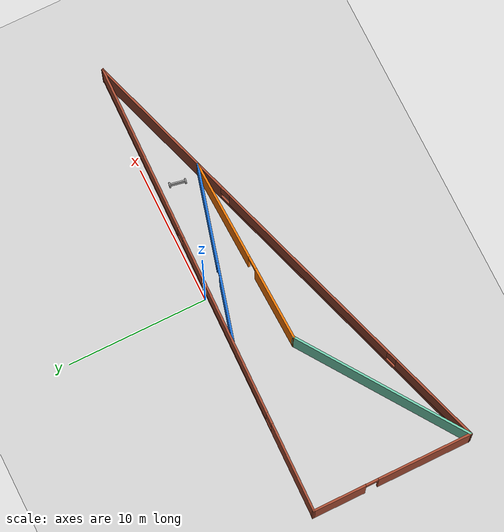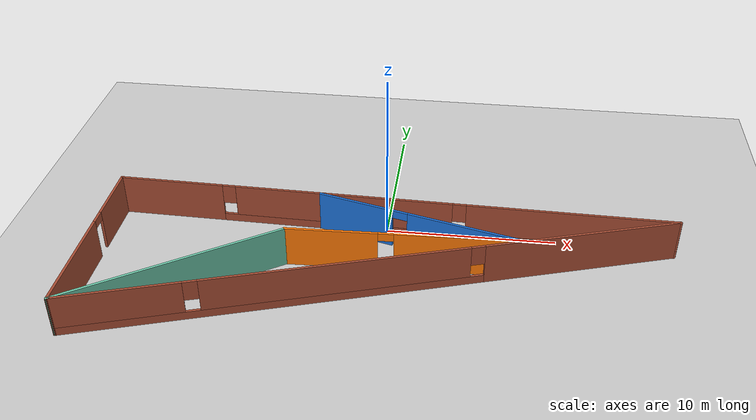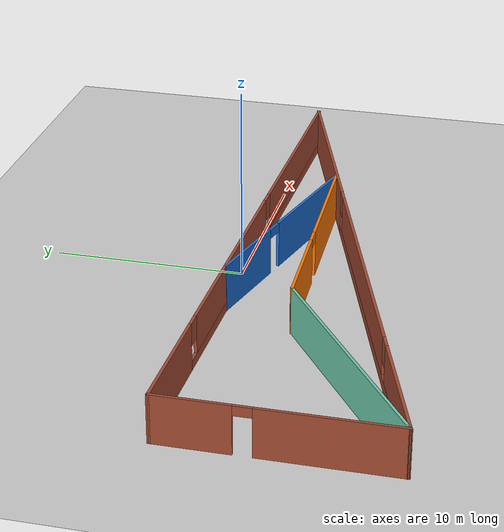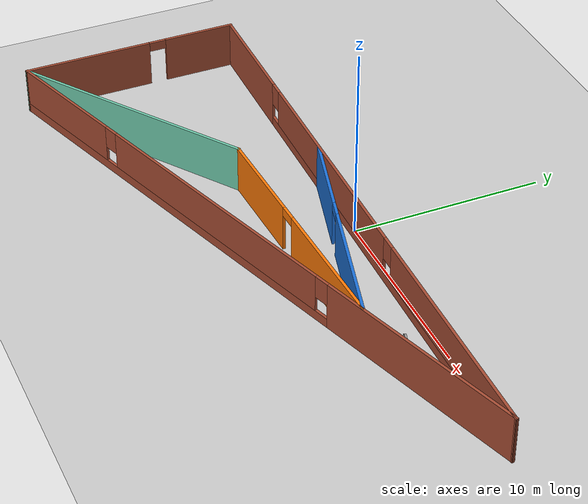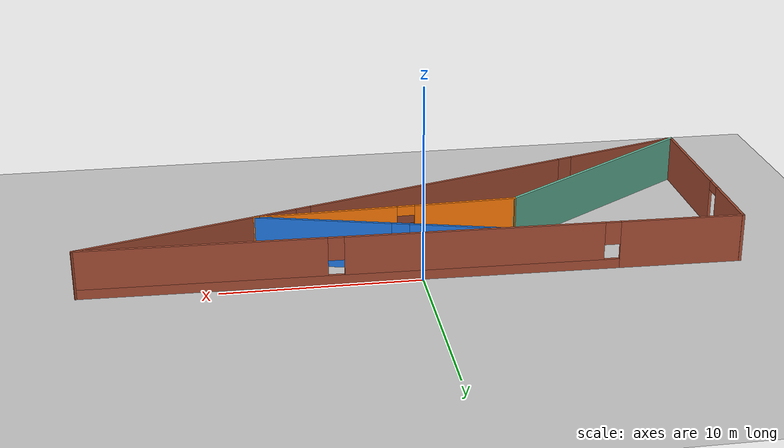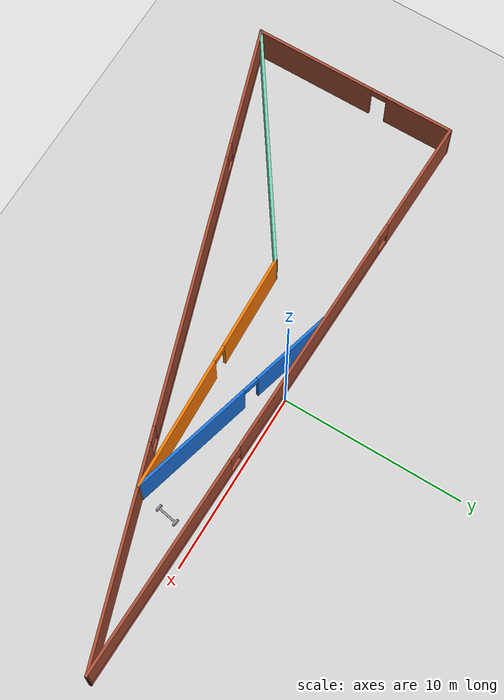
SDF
<sdf version="1.6">
 <world name="WhereAmI">
  <model name="ground_plane">
   <static>1</static>
   <link name="link">
    <collision name="collision">
     <geometry><plane><normal>0 0 1</normal><size>100 100</size></plane></geometry>
     <surface>
      <contact><collide_bitmask>65535</collide_bitmask></contact>
      <friction><ode><mu>100</mu><mu2>50</mu2></ode></friction>
     </surface>
    </collision>
    <visual name="visual">
     <cast_shadows>0</cast_shadows>
     <geometry><plane><normal>0 0 1</normal><size>100 100</size></plane></geometry>
     <material>
      <script><uri>file://media/materials/scripts/gazebo.material</uri><name>Gazebo/Grey</name></script>
     </material>
    </visual>
   </link>
  </model>
  <model name="Building">
   <pose>0.2954 -5.59685 0 0 -0 0</pose>
   <link name="Wall_0">
    <pose>-16.489 0.014665 0 0 -0 1.57343</pose>
    <visual name="Wall_0_Visual_0">
     <pose>-2.36202 0 1.25 0 -0 0</pose>
     <geometry><box><size>6.79601 0.15 2.5</size></box></geometry>
     <material>
      <script><uri>file://media/materials/scripts/gazebo.material</uri><name>Gazebo/Bricks</name></script>
      <ambient>1 1 1 1</ambient>
     </material>
     <meta><layer>0</layer></meta>
    </visual>
    <collision name="Wall_0_Collision_0">
     <geometry><box><size>6.79601 0.15 2.5</size></box></geometry>
     <pose>-2.36202 0 1.25 0 -0 0</pose>
    </collision>
    <visual name="Wall_0_Visual_1">
     <pose>3.848 0 1.25 0 -0 0</pose>
     <geometry><box><size>3.82403 0.15 2.5</size></box></geometry>
     <material>
      <script><uri>file://media/materials/scripts/gazebo.material</uri><name>Gazebo/Bricks</name></script>
      <ambient>1 1 1 1</ambient>
     </material>
     <meta><layer>0</layer></meta>
    </visual>
    <collision name="Wall_0_Collision_1">
     <geometry><box><size>3.82403 0.15 2.5</size></box></geometry>
     <pose>3.848 0 1.25 0 -0 0</pose>
    </collision>
    <visual name="Wall_0_Visual_2">
     <pose>1.48598 0 2.25 0 -0 0</pose>
     <geometry><box><size>0.9 0.15 0.5</size></box></geometry>
     <material>
      <script><uri>file://media/materials/scripts/gazebo.material</uri><name>Gazebo/Bricks</name></script>
      <ambient>1 1 1 1</ambient>
     </material>
     <meta><layer>0</layer></meta>
    </visual>
    <collision name="Wall_0_Collision_2">
     <geometry><box><size>0.9 0.15 0.5</size></box></geometry>
     <pose>1.48598 0 2.25 0 -0 0</pose>
    </collision>
   </link>
   <link name="Wall_1">
    <pose>-0.009033 5.36466 0 0 -0 -0.0197</pose>
    <visual name="Wall_1_Visual_0">
     <pose>-13.3962 0 1.25 0 -0 0</pose>
     <geometry><box><size>6.35403 0.15 2.5</size></box></geometry>
     <material>
      <script><uri>file://media/materials/scripts/gazebo.material</uri><name>Gazebo/Bricks</name></script>
      <ambient>1 1 1 1</ambient>
     </material>
     <meta><layer>0</layer></meta>
    </visual>
    <collision name="Wall_1_Collision_0">
     <geometry><box><size>6.35403 0.15 2.5</size></box></geometry>
     <pose>-13.3962 0 1.25 0 -0 0</pose>
    </collision>
    <visual name="Wall_1_Visual_1">
     <pose>3.17701 0 0.25 0 -0 0</pose>
     <geometry><box><size>26.7924 0.15 0.5</size></box></geometry>
     <material>
      <script><uri>file://media/materials/scripts/gazebo.material</uri><name>Gazebo/Bricks</name></script>
      <ambient>1 1 1 1</ambient>
     </material>
     <meta><layer>0</layer></meta>
    </visual>
    <collision name="Wall_1_Collision_1">
     <geometry><box><size>26.7924 0.15 0.5</size></box></geometry>
     <pose>3.17701 0 0.25 0 -0 0</pose>
    </collision>
    <visual name="Wall_1_Visual_2">
     <pose>-2.92581 0 1.5 0 -0 0</pose>
     <geometry><box><size>12.9867 0.15 2</size></box></geometry>
     <material>
      <script><uri>file://media/materials/scripts/gazebo.material</uri><name>Gazebo/Bricks</name></script>
      <ambient>1 1 1 1</ambient>
     </material>
     <meta><layer>0</layer></meta>
    </visual>
    <collision name="Wall_1_Collision_2">
     <geometry><box><size>12.9867 0.15 2</size></box></geometry>
     <pose>-2.92581 0 1.5 0 -0 0</pose>
    </collision>
    <visual name="Wall_1_Visual_3">
     <pose>10.4704 0 1.5 0 -0 0</pose>
     <geometry><box><size>12.2057 0.15 2</size></box></geometry>
     <material>
      <script><uri>file://media/materials/scripts/gazebo.material</uri><name>Gazebo/Bricks</name></script>
      <ambient>1 1 1 1</ambient>
     </material>
     <meta><layer>0</layer></meta>
    </visual>
    <collision name="Wall_1_Collision_3">
     <geometry><box><size>12.2057 0.15 2</size></box></geometry>
     <pose>10.4704 0 1.5 0 -0 0</pose>
    </collision>
    <visual name="Wall_1_Visual_4">
     <pose>-9.81917 0 1.9 0 -0 0</pose>
     <geometry><box><size>0.8 0.15 1.2</size></box></geometry>
     <material>
      <script><uri>file://media/materials/scripts/gazebo.material</uri><name>Gazebo/Bricks</name></script>
      <ambient>1 1 1 1</ambient>
     </material>
     <meta><layer>0</layer></meta>
    </visual>
    <collision name="Wall_1_Collision_4">
     <geometry><box><size>0.8 0.15 1.2</size></box></geometry>
     <pose>-9.81917 0 1.9 0 -0 0</pose>
    </collision>
    <visual name="Wall_1_Visual_5">
     <pose>3.96754 0 1.9 0 -0 0</pose>
     <geometry><box><size>0.8 0.15 1.2</size></box></geometry>
     <material>
      <script><uri>file://media/materials/scripts/gazebo.material</uri><name>Gazebo/Bricks</name></script>
      <ambient>1 1 1 1</ambient>
     </material>
     <meta><layer>0</layer></meta>
    </visual>
    <collision name="Wall_1_Collision_5">
     <geometry><box><size>0.8 0.15 1.2</size></box></geometry>
     <pose>3.96754 0 1.9 0 -0 0</pose>
    </collision>
   </link>
   <link name="Wall_2">
    <pose>0.000967 -0.315335 0 0 -0 -2.82696</pose>
    <visual name="Wall_2_Visual_0">
     <pose>-11.6503 0 1.25 0 -0 0</pose>
     <geometry><box><size>11.5215 0.15 2.5</size></box></geometry>
     <material>
      <script><uri>file://media/materials/scripts/gazebo.material</uri><name>Gazebo/Bricks</name></script>
      <ambient>1 1 1 1</ambient>
     </material>
     <meta><layer>0</layer></meta>
    </visual>
    <collision name="Wall_2_Collision_0">
     <geometry><box><size>11.5215 0.15 2.5</size></box></geometry>
     <pose>-11.6503 0 1.25 0 -0 0</pose>
    </collision>
    <visual name="Wall_2_Visual_1">
     <pose>5.76077 0 0.25 0 -0 0</pose>
     <geometry><box><size>23.3006 0.15 0.5</size></box></geometry>
     <material>
      <script><uri>file://media/materials/scripts/gazebo.material</uri><name>Gazebo/Bricks</name></script>
      <ambient>1 1 1 1</ambient>
     </material>
     <meta><layer>0</layer></meta>
    </visual>
    <collision name="Wall_2_Collision_1">
     <geometry><box><size>23.3006 0.15 0.5</size></box></geometry>
     <pose>5.76077 0 0.25 0 -0 0</pose>
    </collision>
    <visual name="Wall_2_Visual_2">
     <pose>2.31914 0 1.5 0 -0 0</pose>
     <geometry><box><size>14.8173 0.15 2</size></box></geometry>
     <material>
      <script><uri>file://media/materials/scripts/gazebo.material</uri><name>Gazebo/Bricks</name></script>
      <ambient>1 1 1 1</ambient>
     </material>
     <meta><layer>0</layer></meta>
    </visual>
    <collision name="Wall_2_Collision_2">
     <geometry><box><size>14.8173 0.15 2</size></box></geometry>
     <pose>2.31914 0 1.5 0 -0 0</pose>
    </collision>
    <visual name="Wall_2_Visual_3">
     <pose>13.9694 0 1.5 0 -0 0</pose>
     <geometry><box><size>6.88326 0.15 2</size></box></geometry>
     <material>
      <script><uri>file://media/materials/scripts/gazebo.material</uri><name>Gazebo/Bricks</name></script>
      <ambient>1 1 1 1</ambient>
     </material>
     <meta><layer>0</layer></meta>
    </visual>
    <collision name="Wall_2_Collision_3">
     <geometry><box><size>6.88326 0.15 2</size></box></geometry>
     <pose>13.9694 0 1.5 0 -0 0</pose>
    </collision>
    <visual name="Wall_2_Visual_4">
     <pose>-5.48951 0 1.9 0 -0 0</pose>
     <geometry><box><size>0.8 0.15 1.2</size></box></geometry>
     <material>
      <script><uri>file://media/materials/scripts/gazebo.material</uri><name>Gazebo/Bricks</name></script>
      <ambient>1 1 1 1</ambient>
     </material>
     <meta><layer>0</layer></meta>
    </visual>
    <collision name="Wall_2_Collision_4">
     <geometry><box><size>0.8 0.15 1.2</size></box></geometry>
     <pose>-5.48951 0 1.9 0 -0 0</pose>
    </collision>
    <visual name="Wall_2_Visual_5">
     <pose>10.1278 0 1.9 0 -0 0</pose>
     <geometry><box><size>0.8 0.15 1.2</size></box></geometry>
     <material>
      <script><uri>file://media/materials/scripts/gazebo.material</uri><name>Gazebo/Bricks</name></script>
      <ambient>1 1 1 1</ambient>
     </material>
     <meta><layer>0</layer></meta>
    </visual>
    <collision name="Wall_2_Collision_5">
     <geometry><box><size>0.8 0.15 1.2</size></box></geometry>
     <pose>10.1278 0 1.9 0 -0 0</pose>
    </collision>
   </link>
   <link name="Wall_3">
    <collision name="Wall_3_Collision">
     <geometry><box><size>13.2734 0.15 2.5</size></box></geometry>
     <pose>0 0 1.25 0 -0 0</pose>
    </collision>
    <visual name="Wall_3_Visual">
     <pose>0 0 1.25 0 -0 0</pose>
     <geometry><box><size>13.2734 0.15 2.5</size></box></geometry>
     <material>
      <script><uri>file://media/materials/scripts/gazebo.material</uri><name>Gazebo/Grey</name></script>
      <ambient>0.435294 0.796078 0.67451 1</ambient>
     </material>
     <meta><layer>0</layer></meta>
    </visual>
    <pose>-11.0648 -1.95606 0 0 -0 0.60171</pose>
   </link>
   <link name="Wall_4">
    <pose>1.02457 1.99269 0 0 -0 0.035086</pose>
    <visual name="Wall_4_Visual_0">
     <pose>-4.10049 0 1.25 0 -0 0</pose>
     <geometry><box><size>5.31733 0.15 2.5</size></box></geometry>
     <material>
      <script><uri>file://media/materials/scripts/gazebo.material</uri><name>Gazebo/Grey</name></script>
      <ambient>0.996078 0.47451 0.0196078 1</ambient>
     </material>
     <meta><layer>0</layer></meta>
    </visual>
    <collision name="Wall_4_Collision_0">
     <geometry><box><size>5.31733 0.15 2.5</size></box></geometry>
     <pose>-4.10049 0 1.25 0 -0 0</pose>
    </collision>
    <visual name="Wall_4_Visual_1">
     <pose>3.10866 0 1.25 0 -0 0</pose>
     <geometry><box><size>7.30099 0.15 2.5</size></box></geometry>
     <material>
      <script><uri>file://media/materials/scripts/gazebo.material</uri><name>Gazebo/Grey</name></script>
      <ambient>0.996078 0.47451 0.0196078 1</ambient>
     </material>
     <meta><layer>0</layer></meta>
    </visual>
    <collision name="Wall_4_Collision_1">
     <geometry><box><size>7.30099 0.15 2.5</size></box></geometry>
     <pose>3.10866 0 1.25 0 -0 0</pose>
    </collision>
    <visual name="Wall_4_Visual_2">
     <pose>-0.991829 0 2.25 0 -0 0</pose>
     <geometry><box><size>0.9 0.15 0.5</size></box></geometry>
     <material>
      <script><uri>file://media/materials/scripts/gazebo.material</uri><name>Gazebo/Grey</name></script>
      <ambient>0.996078 0.47451 0.0196078 1</ambient>
     </material>
     <meta><layer>0</layer></meta>
    </visual>
    <collision name="Wall_4_Collision_2">
     <geometry><box><size>0.9 0.15 0.5</size></box></geometry>
     <pose>-0.991829 0 2.25 0 -0 0</pose>
    </collision>
   </link>
   <link name="Wall_6">
    <pose>1.74002 3.82537 0 0 -0 2.87979</pose>
    <visual name="Wall_6_Visual_0">
     <pose>-2.76788 0 1.25 0 -0 0</pose>
     <geometry><box><size>6.96425 0.15 2.5</size></box></geometry>
     <material>
      <script><uri>file://media/materials/scripts/gazebo.material</uri><name>Gazebo/Grey</name></script>
      <ambient>0.109804 0.443137 0.847059 1</ambient>
     </material>
     <meta><layer>0</layer></meta>
    </visual>
    <collision name="Wall_6_Collision_0">
     <geometry><box><size>6.96425 0.15 2.5</size></box></geometry>
     <pose>-2.76788 0 1.25 0 -0 0</pose>
    </collision>
    <visual name="Wall_6_Visual_1">
     <pose>3.93213 0 1.25 0 -0 0</pose>
     <geometry><box><size>4.63575 0.15 2.5</size></box></geometry>
     <material>
      <script><uri>file://media/materials/scripts/gazebo.material</uri><name>Gazebo/Grey</name></script>
      <ambient>0.109804 0.443137 0.847059 1</ambient>
     </material>
     <meta><layer>0</layer></meta>
    </visual>
    <collision name="Wall_6_Collision_1">
     <geometry><box><size>4.63575 0.15 2.5</size></box></geometry>
     <pose>3.93213 0 1.25 0 -0 0</pose>
    </collision>
    <visual name="Wall_6_Visual_2">
     <pose>1.16425 0 2.25 0 -0 0</pose>
     <geometry><box><size>0.9 0.15 0.5</size></box></geometry>
     <material>
      <script><uri>file://media/materials/scripts/gazebo.material</uri><name>Gazebo/Grey</name></script>
      <ambient>0.109804 0.443137 0.847059 1</ambient>
     </material>
     <meta><layer>0</layer></meta>
    </visual>
    <collision name="Wall_6_Collision_2">
     <geometry><box><size>0.9 0.15 0.5</size></box></geometry>
     <pose>1.16425 0 2.25 0 -0 0</pose>
    </collision>
   </link>
   <static>1</static>
  </model>
  <model name="twowheelsrobotModel_clone_0">
   <link name="link_0">
    <pose>0 0 0.2 0 -0 0</pose>
    <inertial>
     <mass>1</mass>
     <inertia>
      <ixx>0.166667</ixx>
      <ixy>0</ixy>
      <ixz>0</ixz>
      <iyy>0.166667</iyy>
      <iyz>0</iyz>
      <izz>0.166667</izz>
     </inertia>
    </inertial>
    <visual name="visual">
     <geometry><box><size>0.3 1 0.1</size></box></geometry>
     <material>
      <lighting>1</lighting>
      <script><uri>file://media/materials/scripts/gazebo.material</uri><name>Gazebo/Grey</name></script>
      <shader type="pixel"><normal_map>__default__</normal_map></shader>
      <ambient>0.3 0.3 0.3 1</ambient>
      <diffuse>0.7 0.7 0.7 1</diffuse>
      <specular>0.01 0.01 0.01 1</specular>
      <emissive>0 0 0 1</emissive>
     </material>
    </visual>
    <collision name="collision">
     <geometry><box><size>0.3 1 0.1</size></box></geometry>
     <surface>
      <friction>
       <ode><mu>1</mu><mu2>1</mu2><fdir1>0 0 0</fdir1><slip1>0</slip1><slip2>0</slip2></ode>
       <torsional>
        <coefficient>1</coefficient>
        <patch_radius>0</patch_radius>
        <surface_radius>0</surface_radius>
        <use_patch_radius>1</use_patch_radius>
        <ode><slip>0</slip></ode>
       </torsional>
      </friction>
      <bounce><restitution_coefficient>0</restitution_coefficient><threshold>1e+06</threshold></bounce>
      <contact>
       <collide_without_contact>0</collide_without_contact>
       <collide_without_contact_bitmask>1</collide_without_contact_bitmask>
       <collide_bitmask>1</collide_bitmask>
       <ode>
        <soft_cfm>0</soft_cfm>
        <soft_erp>0.2</soft_erp>
        <kp>1e+13</kp>
        <kd>1</kd>
        <max_vel>0.01</max_vel>
        <min_depth>0</min_depth>
       </ode>
       <bullet>
        <split_impulse>1</split_impulse>
        <split_impulse_penetration_threshold>-0.01</split_impulse_penetration_threshold>
        <soft_cfm>0</soft_cfm>
        <soft_erp>0.2</soft_erp>
        <kp>1e+13</kp>
        <kd>1</kd>
       </bullet>
      </contact>
     </surface>
    </collision>
   </link>
   <link name="link_1">
    <pose>0 -0.550019 0.2 1.5707 -0 0</pose>
    <inertial>
     <mass>1</mass>
     <inertia><ixx>0.145833</ixx><ixy>0</ixy><ixz>0</ixz><iyy>0.145833</iyy><iyz>0</iyz><izz>0.125</izz></inertia>
    </inertial>
    <visual name="visual">
     <geometry><cylinder><radius>0.2</radius><length>0.1</length></cylinder></geometry>
     <material>
      <lighting>1</lighting>
      <script><uri>file://media/materials/scripts/gazebo.material</uri><name>Gazebo/Grey</name></script>
      <shader type="pixel"><normal_map>__default__</normal_map></shader>
      <ambient>0.3 0.3 0.3 1</ambient>
      <diffuse>0.7 0.7 0.7 1</diffuse>
      <specular>0.01 0.01 0.01 1</specular>
      <emissive>0 0 0 1</emissive>
     </material>
    </visual>
    <collision name="collision">
     <geometry><cylinder><radius>0.2</radius><length>0.1</length></cylinder></geometry>
     <surface>
      <friction>
       <ode><mu>1</mu><mu2>1</mu2><fdir1>0 0 0</fdir1><slip1>0</slip1><slip2>0</slip2></ode>
       <torsional>
        <coefficient>1</coefficient>
        <patch_radius>0</patch_radius>
        <surface_radius>0</surface_radius>
        <use_patch_radius>1</use_patch_radius>
        <ode><slip>0</slip></ode>
       </torsional>
      </friction>
      <bounce><restitution_coefficient>0</restitution_coefficient><threshold>1e+06</threshold></bounce>
      <contact>
       <collide_without_contact>0</collide_without_contact>
       <collide_without_contact_bitmask>1</collide_without_contact_bitmask>
       <collide_bitmask>1</collide_bitmask>
       <ode>
        <soft_cfm>0</soft_cfm>
        <soft_erp>0.2</soft_erp>
        <kp>1e+13</kp>
        <kd>1</kd>
        <max_vel>0.01</max_vel>
        <min_depth>0</min_depth>
       </ode>
       <bullet>
        <split_impulse>1</split_impulse>
        <split_impulse_penetration_threshold>-0.01</split_impulse_penetration_threshold>
        <soft_cfm>0</soft_cfm>
        <soft_erp>0.2</soft_erp>
        <kp>1e+13</kp>
        <kd>1</kd>
       </bullet>
      </contact>
     </surface>
    </collision>
   </link>
   <link name="link_1_clone">
    <pose>0 0.550019 0.2 1.5707 -0 0</pose>
    <inertial>
     <mass>1</mass>
     <inertia><ixx>0.145833</ixx><ixy>0</ixy><ixz>0</ixz><iyy>0.145833</iyy><iyz>0</iyz><izz>0.125</izz></inertia>
    </inertial>
    <visual name="visual">
     <geometry><cylinder><radius>0.2</radius><length>0.1</length></cylinder></geometry>
     <material>
      <lighting>1</lighting>
      <script><uri>file://media/materials/scripts/gazebo.material</uri><name>Gazebo/Grey</name></script>
      <shader type="pixel"><normal_map>__default__</normal_map></shader>
      <ambient>0.3 0.3 0.3 1</ambient>
      <diffuse>0.7 0.7 0.7 1</diffuse>
      <specular>0.01 0.01 0.01 1</specular>
      <emissive>0 0 0 1</emissive>
     </material>
    </visual>
    <collision name="collision">
     <geometry><cylinder><radius>0.2</radius><length>0.1</length></cylinder></geometry>
     <surface>
      <friction>
       <ode><mu>1</mu><mu2>1</mu2><fdir1>0 0 0</fdir1><slip1>0</slip1><slip2>0</slip2></ode>
       <torsional>
        <coefficient>1</coefficient>
        <patch_radius>0</patch_radius>
        <surface_radius>0</surface_radius>
        <use_patch_radius>1</use_patch_radius>
        <ode><slip>0</slip></ode>
       </torsional>
      </friction>
      <bounce><restitution_coefficient>0</restitution_coefficient><threshold>1e+06</threshold></bounce>
      <contact>
       <collide_without_contact>0</collide_without_contact>
       <collide_without_contact_bitmask>1</collide_without_contact_bitmask>
       <collide_bitmask>1</collide_bitmask>
       <ode>
        <soft_cfm>0</soft_cfm>
        <soft_erp>0.2</soft_erp>
        <kp>1e+13</kp>
        <kd>1</kd>
        <max_vel>0.01</max_vel>
        <min_depth>0</min_depth>
       </ode>
       <bullet>
        <split_impulse>1</split_impulse>
        <split_impulse_penetration_threshold>-0.01</split_impulse_penetration_threshold>
        <soft_cfm>0</soft_cfm>
        <soft_erp>0.2</soft_erp>
        <kp>1e+13</kp>
        <kd>1</kd>
       </bullet>
      </contact>
     </surface>
    </collision>
   </link>
   <joint name="link_0_JOINT_0" type="revolute">
    <parent>link_0</parent>
    <child>link_1</child>
    <axis>
     <xyz>0 0 1</xyz>
     <limit>
      <lower>-1.79769e+308</lower>
      <upper>1.79769e+308</upper>
      <effort>-1</effort>
      <velocity>-1</velocity>
     </limit>
     <dynamics>
      <spring_reference>0</spring_reference>
      <spring_stiffness>0</spring_stiffness>
      <damping>0</damping>
     </dynamics>
     <use_parent_model_frame>0</use_parent_model_frame>
    </axis>
    <physics>
     <ode><limit><cfm>0</cfm><erp>0.2</erp></limit><suspension><cfm>0</cfm><erp>0.2</erp></suspension></ode>
    </physics>
   </joint>
   <joint name="link_0_JOINT_1" type="revolute">
    <parent>link_0</parent>
    <child>link_1_clone</child>
    <axis>
     <xyz>0 0 1</xyz>
     <limit>
      <lower>-1.79769e+308</lower>
      <upper>1.79769e+308</upper>
      <effort>-1</effort>
      <velocity>-1</velocity>
     </limit>
     <dynamics>
      <spring_reference>0</spring_reference>
      <spring_stiffness>0</spring_stiffness>
      <damping>0</damping>
     </dynamics>
     <use_parent_model_frame>0</use_parent_model_frame>
    </axis>
    <physics>
     <ode><limit><cfm>0</cfm><erp>0.2</erp></limit><suspension><cfm>0</cfm><erp>0.2</erp></suspension></ode>
    </physics>
   </joint>
   <static>0</static>
   <pose>7.88559 -1.80989 0.227817 3.14159 -1.43126 -0.183591</pose>
  </model>
 </world>
</sdf>
